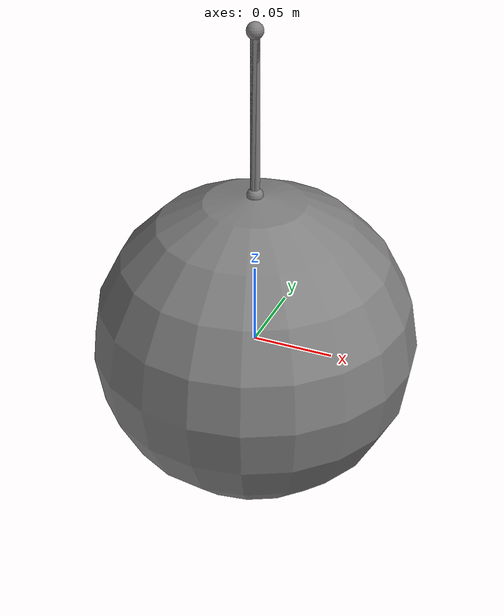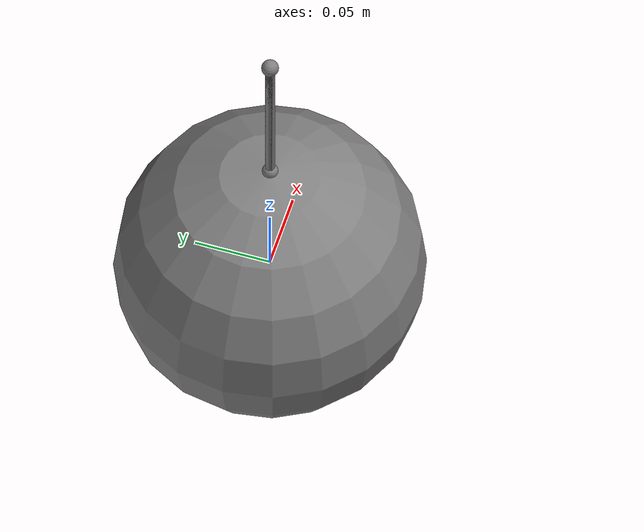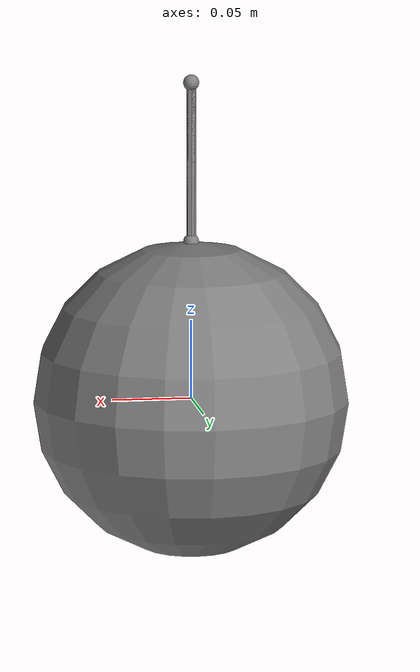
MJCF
<mujoco>
  <worldbody>
    <site name="siteworld"/>
    <body>
      <joint type="slide" axis="1 0 0"/>
      <geom type="sphere" size="0.1"/>
      <site name="site0" pos="0 0 .1"/>
      <body>
        <joint type="slide" axis="1 0 0"/>
        <joint type="hinge" axis="0 1 0"/>
        <geom type="sphere" size="0.1"/>
        <site name="site1" pos="0 0 .2"/>
      </body>
    </body>
  </worldbody>
  <tendon>
    <spatial name="spatial0">
      <pulley divisor="2"/>
      <site site="siteworld"/>
      <site site="site0"/>
      <site site="site1"/>
    </spatial>
    <spatial name="spatial1">
      <site site="siteworld"/>
      <site site="site0"/>
    </spatial>
    <spatial name="spatial2">
      <site site="siteworld"/>
      <site site="site1"/>
    </spatial>
    <spatial name="spatial3">
      <pulley divisor="3"/>
      <site site="site0"/>
      <site site="site1"/>
    </spatial>
  </tendon>
  <actuator>
    <motor tendon="spatial0"/>
    <motor tendon="spatial1"/>
    <motor tendon="spatial2"/>
    <motor tendon="spatial3"/>
  </actuator>
  <keyframe>
    <key qpos=".25 .5 .75"/>
  </keyframe>
</mujoco>
